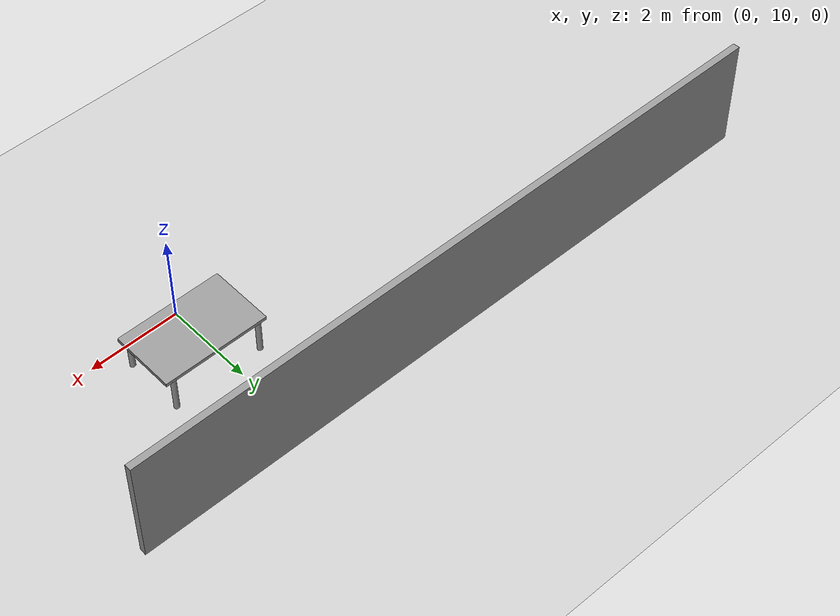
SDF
<sdf version="1.6">
 <world name="default">
  <model name="ground_plane">
   <static>1</static>
   <link name="link">
    <collision name="collision">
     <geometry><plane><normal>0 0 1</normal><size>100 100</size></plane></geometry>
     <surface>
      <contact><collide_bitmask>65535</collide_bitmask></contact>
      <friction><ode><mu>100</mu><mu2>50</mu2></ode></friction>
     </surface>
    </collision>
    <visual name="visual">
     <cast_shadows>0</cast_shadows>
     <geometry><plane><normal>0 0 1</normal><size>100 100</size></plane></geometry>
     <material>
      <script><uri>file://media/materials/scripts/gazebo.material</uri><name>Gazebo/Grey</name></script>
     </material>
    </visual>
   </link>
  </model>
  <model name="six_floor">
   <link name="Wall_154">
    <pose>-5.35025 12.0071 0 0 -0 0</pose>
    <visual name="Wall_154_Visual">
     <pose>0 0 1.25 0 -0 0</pose>
     <geometry><box><size>15 0.15 2.5</size></box></geometry>
     <material>
      <script><uri>file://media/materials/scripts/gazebo.material</uri><name>Gazebo/Grey</name></script>
      <ambient>1 1 1 1</ambient>
     </material>
     <meta><layer>0</layer></meta>
    </visual>
    <collision name="Wall_154_Collision">
     <pose>0 0 1.25 0 -0 0</pose>
     <geometry><box><size>15 0.15 2.5</size></box></geometry>
     <surface>
      <friction>
       <ode><mu>1</mu><mu2>1</mu2><fdir1>0 0 0</fdir1><slip1>0</slip1><slip2>0</slip2></ode>
       <torsional>
        <coefficient>1</coefficient>
        <patch_radius>0</patch_radius>
        <surface_radius>0</surface_radius>
        <use_patch_radius>1</use_patch_radius>
        <ode><slip>0</slip></ode>
       </torsional>
      </friction>
      <bounce><restitution_coefficient>0</restitution_coefficient><threshold>1e+06</threshold></bounce>
      <contact>
       <collide_without_contact>0</collide_without_contact>
       <collide_without_contact_bitmask>1</collide_without_contact_bitmask>
       <collide_bitmask>1</collide_bitmask>
       <ode>
        <soft_cfm>0</soft_cfm>
        <soft_erp>0.2</soft_erp>
        <kp>1e+13</kp>
        <kd>1</kd>
        <max_vel>0.01</max_vel>
        <min_depth>0</min_depth>
       </ode>
       <bullet>
        <split_impulse>1</split_impulse>
        <split_impulse_penetration_threshold>-0.01</split_impulse_penetration_threshold>
        <soft_cfm>0</soft_cfm>
        <soft_erp>0.2</soft_erp>
        <kp>1e+13</kp>
        <kd>1</kd>
       </bullet>
      </contact>
     </surface>
    </collision>
   </link>
   <static>1</static>
   <pose>1.59766 1.83874 0 0 -0 0</pose>
  </model>
  <model name="table1_clone">
   <link name="link_0">
    <inertial>
     <mass>0.0138978</mass>
     <inertia>
      <ixx>0.000753284</ixx>
      <ixy>0</ixy>
      <ixz>0</ixz>
      <iyy>0.000753284</iyy>
      <iyz>0</iyz>
      <izz>2.41414e-05</izz>
     </inertia>
    </inertial>
    <pose>-0.986535 -0.645852 -0.081533 0 -0 0</pose>
    <visual name="visual">
     <geometry><cylinder><radius>0.0589418</radius><length>0.8</length></cylinder></geometry>
     <material>
      <lighting>1</lighting>
      <script><uri>file://media/materials/scripts/gazebo.material</uri><name>Gazebo/Grey</name></script>
      <shader type="vertex"><normal_map>__default__</normal_map></shader>
      <ambient>0.3 0.3 0.3 1</ambient>
      <diffuse>0.7 0.7 0.7 1</diffuse>
      <specular>0.01 0.01 0.01 1</specular>
      <emissive>0 0 0 1</emissive>
     </material>
    </visual>
    <collision name="collision">
     <geometry><cylinder><radius>0.058942</radius><length>0.8</length></cylinder></geometry>
     <surface>
      <friction>
       <ode><mu>1</mu><mu2>1</mu2><fdir1>0 0 0</fdir1><slip1>0</slip1><slip2>0</slip2></ode>
       <torsional>
        <coefficient>1</coefficient>
        <patch_radius>0</patch_radius>
        <surface_radius>0</surface_radius>
        <use_patch_radius>1</use_patch_radius>
        <ode><slip>0</slip></ode>
       </torsional>
      </friction>
      <bounce><restitution_coefficient>0</restitution_coefficient><threshold>1e+06</threshold></bounce>
      <contact>
       <collide_without_contact>0</collide_without_contact>
       <collide_without_contact_bitmask>1</collide_without_contact_bitmask>
       <collide_bitmask>1</collide_bitmask>
       <ode>
        <soft_cfm>0</soft_cfm>
        <soft_erp>0.2</soft_erp>
        <kp>1e+13</kp>
        <kd>1</kd>
        <max_vel>0.01</max_vel>
        <min_depth>0</min_depth>
       </ode>
       <bullet>
        <split_impulse>1</split_impulse>
        <split_impulse_penetration_threshold>-0.01</split_impulse_penetration_threshold>
        <soft_cfm>0</soft_cfm>
        <soft_erp>0.2</soft_erp>
        <kp>1e+13</kp>
        <kd>1</kd>
       </bullet>
      </contact>
     </surface>
    </collision>
   </link>
   <link name="link_0_clone">
    <inertial>
     <mass>0.0138978</mass>
     <inertia>
      <ixx>0.000753284</ixx>
      <ixy>0</ixy>
      <ixz>0</ixz>
      <iyy>0.000753284</iyy>
      <iyz>0</iyz>
      <izz>2.41414e-05</izz>
     </inertia>
    </inertial>
    <pose>-1.00558 0.645455 -0.081533 0 -0 0</pose>
    <visual name="visual">
     <geometry><cylinder><radius>0.0589418</radius><length>0.8</length></cylinder></geometry>
     <material>
      <lighting>1</lighting>
      <script><uri>file://media/materials/scripts/gazebo.material</uri><name>Gazebo/Grey</name></script>
      <shader type="vertex"><normal_map>__default__</normal_map></shader>
      <ambient>0.3 0.3 0.3 1</ambient>
      <diffuse>0.7 0.7 0.7 1</diffuse>
      <specular>0.01 0.01 0.01 1</specular>
      <emissive>0 0 0 1</emissive>
     </material>
    </visual>
    <collision name="collision">
     <geometry><cylinder><radius>0.058942</radius><length>0.8</length></cylinder></geometry>
     <surface>
      <friction>
       <ode><mu>1</mu><mu2>1</mu2><fdir1>0 0 0</fdir1><slip1>0</slip1><slip2>0</slip2></ode>
       <torsional>
        <coefficient>1</coefficient>
        <patch_radius>0</patch_radius>
        <surface_radius>0</surface_radius>
        <use_patch_radius>1</use_patch_radius>
        <ode><slip>0</slip></ode>
       </torsional>
      </friction>
      <bounce><restitution_coefficient>0</restitution_coefficient><threshold>1e+06</threshold></bounce>
      <contact>
       <collide_without_contact>0</collide_without_contact>
       <collide_without_contact_bitmask>1</collide_without_contact_bitmask>
       <collide_bitmask>1</collide_bitmask>
       <ode>
        <soft_cfm>0</soft_cfm>
        <soft_erp>0.2</soft_erp>
        <kp>1e+13</kp>
        <kd>1</kd>
        <max_vel>0.01</max_vel>
        <min_depth>0</min_depth>
       </ode>
       <bullet>
        <split_impulse>1</split_impulse>
        <split_impulse_penetration_threshold>-0.01</split_impulse_penetration_threshold>
        <soft_cfm>0</soft_cfm>
        <soft_erp>0.2</soft_erp>
        <kp>1e+13</kp>
        <kd>1</kd>
       </bullet>
      </contact>
     </surface>
    </collision>
   </link>
   <link name="link_0_clone_0">
    <inertial>
     <mass>0.0138978</mass>
     <inertia>
      <ixx>0.000753284</ixx>
      <ixy>0</ixy>
      <ixz>0</ixz>
      <iyy>0.000753284</iyy>
      <iyz>0</iyz>
      <izz>2.41414e-05</izz>
     </inertia>
    </inertial>
    <pose>0.995821 -0.65431 -0.081533 0 -0 0</pose>
    <visual name="visual">
     <geometry><cylinder><radius>0.0589418</radius><length>0.8</length></cylinder></geometry>
     <material>
      <lighting>1</lighting>
      <script><uri>file://media/materials/scripts/gazebo.material</uri><name>Gazebo/Grey</name></script>
      <shader type="vertex"><normal_map>__default__</normal_map></shader>
      <ambient>0.3 0.3 0.3 1</ambient>
      <diffuse>0.7 0.7 0.7 1</diffuse>
      <specular>0.01 0.01 0.01 1</specular>
      <emissive>0 0 0 1</emissive>
     </material>
    </visual>
    <collision name="collision">
     <geometry><cylinder><radius>0.058942</radius><length>0.8</length></cylinder></geometry>
     <surface>
      <friction>
       <ode><mu>1</mu><mu2>1</mu2><fdir1>0 0 0</fdir1><slip1>0</slip1><slip2>0</slip2></ode>
       <torsional>
        <coefficient>1</coefficient>
        <patch_radius>0</patch_radius>
        <surface_radius>0</surface_radius>
        <use_patch_radius>1</use_patch_radius>
        <ode><slip>0</slip></ode>
       </torsional>
      </friction>
      <bounce><restitution_coefficient>0</restitution_coefficient><threshold>1e+06</threshold></bounce>
      <contact>
       <collide_without_contact>0</collide_without_contact>
       <collide_without_contact_bitmask>1</collide_without_contact_bitmask>
       <collide_bitmask>1</collide_bitmask>
       <ode>
        <soft_cfm>0</soft_cfm>
        <soft_erp>0.2</soft_erp>
        <kp>1e+13</kp>
        <kd>1</kd>
        <max_vel>0.01</max_vel>
        <min_depth>0</min_depth>
       </ode>
       <bullet>
        <split_impulse>1</split_impulse>
        <split_impulse_penetration_threshold>-0.01</split_impulse_penetration_threshold>
        <soft_cfm>0</soft_cfm>
        <soft_erp>0.2</soft_erp>
        <kp>1e+13</kp>
        <kd>1</kd>
       </bullet>
      </contact>
     </surface>
    </collision>
   </link>
   <link name="link_0_clone_1">
    <inertial>
     <mass>0.0138978</mass>
     <inertia>
      <ixx>0.000753284</ixx>
      <ixy>0</ixy>
      <ixz>0</ixz>
      <iyy>0.000753284</iyy>
      <iyz>0</iyz>
      <izz>2.41414e-05</izz>
     </inertia>
    </inertial>
    <pose>0.993949 0.669896 -0.081533 0 -0 0</pose>
    <visual name="visual">
     <geometry><cylinder><radius>0.0589418</radius><length>0.8</length></cylinder></geometry>
     <material>
      <lighting>1</lighting>
      <script><uri>file://media/materials/scripts/gazebo.material</uri><name>Gazebo/Grey</name></script>
      <shader type="vertex"><normal_map>__default__</normal_map></shader>
      <ambient>0.3 0.3 0.3 1</ambient>
      <diffuse>0.7 0.7 0.7 1</diffuse>
      <specular>0.01 0.01 0.01 1</specular>
      <emissive>0 0 0 1</emissive>
     </material>
    </visual>
    <collision name="collision">
     <geometry><cylinder><radius>0.058942</radius><length>0.8</length></cylinder></geometry>
     <surface>
      <friction>
       <ode><mu>1</mu><mu2>1</mu2><fdir1>0 0 0</fdir1><slip1>0</slip1><slip2>0</slip2></ode>
       <torsional>
        <coefficient>1</coefficient>
        <patch_radius>0</patch_radius>
        <surface_radius>0</surface_radius>
        <use_patch_radius>1</use_patch_radius>
        <ode><slip>0</slip></ode>
       </torsional>
      </friction>
      <bounce><restitution_coefficient>0</restitution_coefficient><threshold>1e+06</threshold></bounce>
      <contact>
       <collide_without_contact>0</collide_without_contact>
       <collide_without_contact_bitmask>1</collide_without_contact_bitmask>
       <collide_bitmask>1</collide_bitmask>
       <ode>
        <soft_cfm>0</soft_cfm>
        <soft_erp>0.2</soft_erp>
        <kp>1e+13</kp>
        <kd>1</kd>
        <max_vel>0.01</max_vel>
        <min_depth>0</min_depth>
       </ode>
       <bullet>
        <split_impulse>1</split_impulse>
        <split_impulse_penetration_threshold>-0.01</split_impulse_penetration_threshold>
        <soft_cfm>0</soft_cfm>
        <soft_erp>0.2</soft_erp>
        <kp>1e+13</kp>
        <kd>1</kd>
       </bullet>
      </contact>
     </surface>
    </collision>
   </link>
   <link name="link_1">
    <inertial>
     <mass>0.262647</mass>
     <inertia>
      <ixx>0.0459207</ixx>
      <ixy>0</ixy>
      <ixz>0</ixz>
      <iyy>0.120256</iyy>
      <iyz>0</iyz>
      <izz>0.165913</izz>
     </inertia>
    </inertial>
    <pose>0.002338 -0.01518 0.326132 0 -0 0</pose>
    <visual name="visual">
     <geometry><box><size>2.34271 1.44639 0.077598</size></box></geometry>
     <material>
      <lighting>1</lighting>
      <script><uri>file://media/materials/scripts/gazebo.material</uri><name>Gazebo/Grey</name></script>
      <shader type="vertex"><normal_map>__default__</normal_map></shader>
     </material>
    </visual>
    <collision name="collision">
     <geometry><box><size>2.34271 1.44639 0.077598</size></box></geometry>
     <surface>
      <friction>
       <ode><mu>1</mu><mu2>1</mu2><fdir1>0 0 0</fdir1><slip1>0</slip1><slip2>0</slip2></ode>
       <torsional>
        <coefficient>1</coefficient>
        <patch_radius>0</patch_radius>
        <surface_radius>0</surface_radius>
        <use_patch_radius>1</use_patch_radius>
        <ode><slip>0</slip></ode>
       </torsional>
      </friction>
      <bounce><restitution_coefficient>0</restitution_coefficient><threshold>1e+06</threshold></bounce>
      <contact>
       <collide_without_contact>1</collide_without_contact>
       <collide_without_contact_bitmask>1</collide_without_contact_bitmask>
       <collide_bitmask>1</collide_bitmask>
       <ode>
        <soft_cfm>0</soft_cfm>
        <soft_erp>0.2</soft_erp>
        <kp>1e+13</kp>
        <kd>1</kd>
        <max_vel>0.01</max_vel>
        <min_depth>0</min_depth>
       </ode>
       <bullet>
        <split_impulse>1</split_impulse>
        <split_impulse_penetration_threshold>-0.01</split_impulse_penetration_threshold>
        <soft_cfm>0</soft_cfm>
        <soft_erp>0.2</soft_erp>
        <kp>1e+13</kp>
        <kd>1</kd>
       </bullet>
      </contact>
     </surface>
    </collision>
   </link>
   <static>0</static>
   <pose>0.362695 11.0834 0.481527 0 -0 1e-06</pose>
  </model>
 </world>
</sdf>
